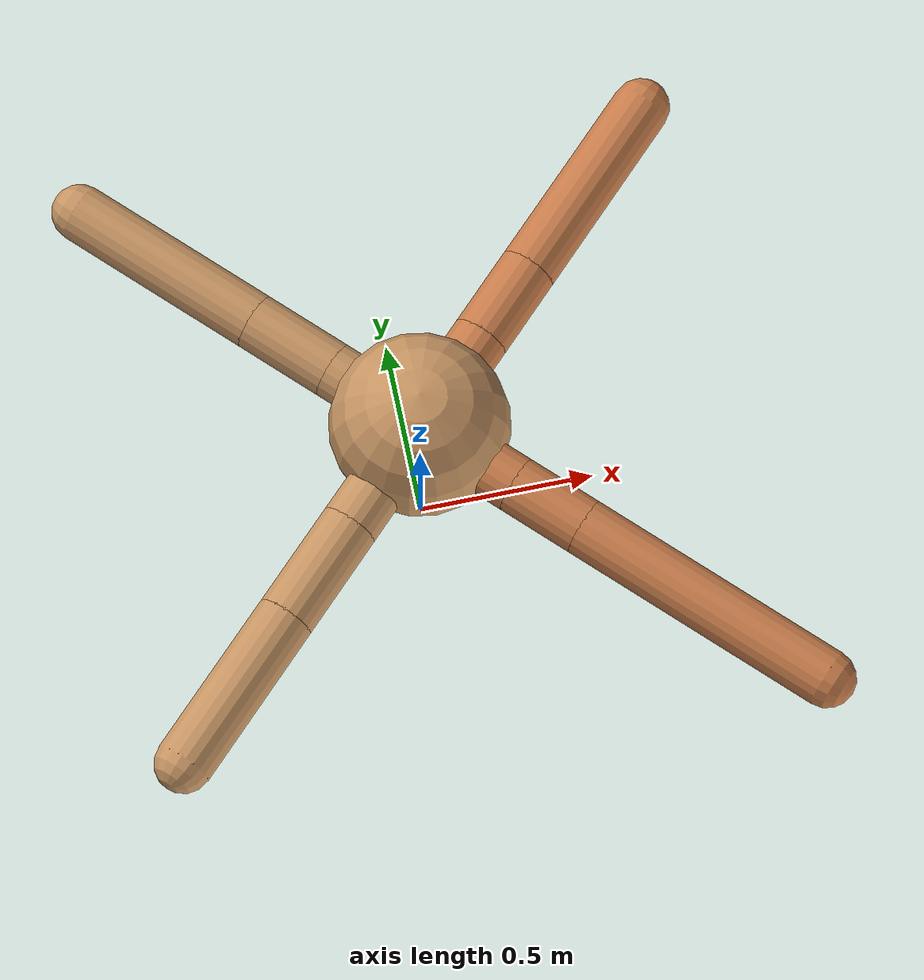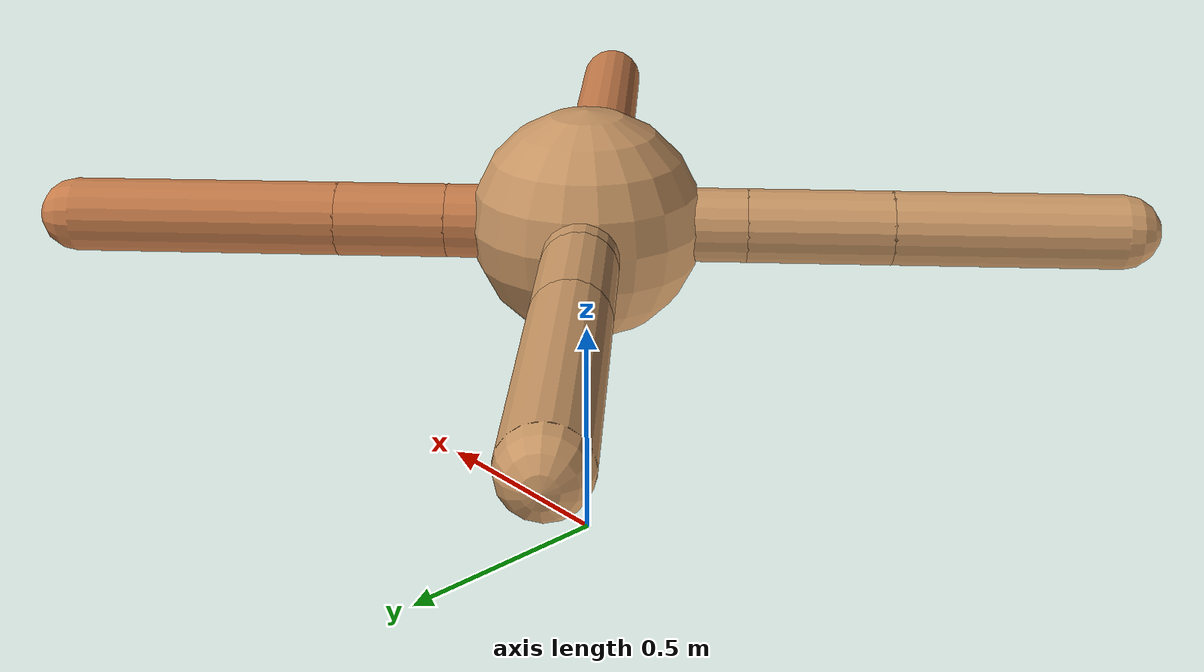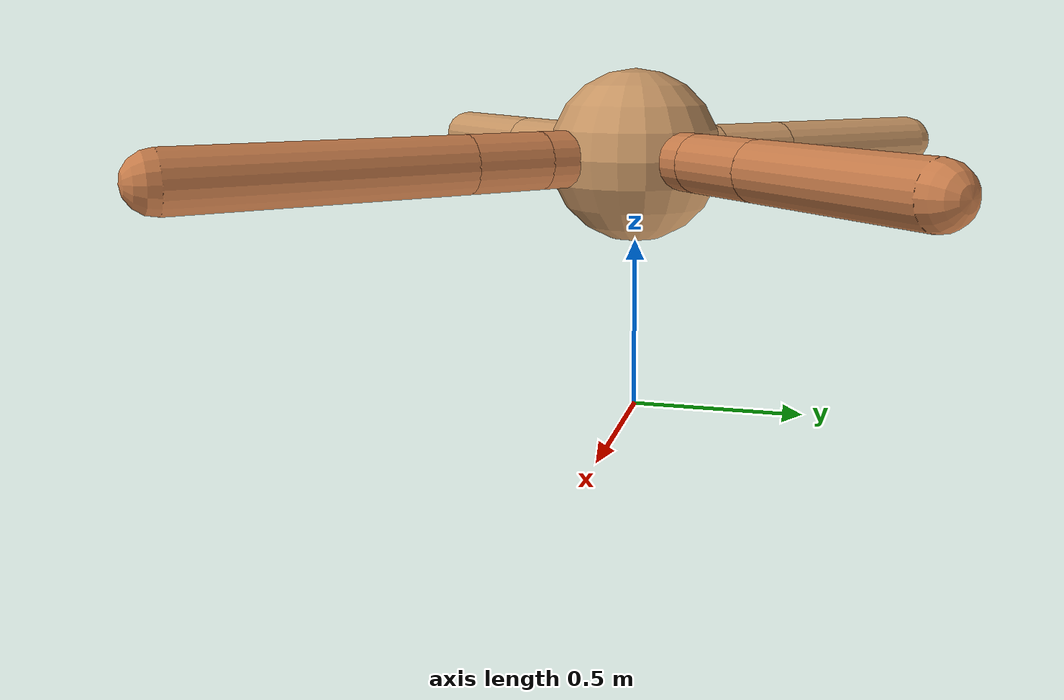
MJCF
<mujoco model="ant">
  <compiler angle="degree" coordinate="local" inertiafromgeom="true" />
  <option integrator="RK4" timestep="0.01" />
  <custom>
    <numeric data="0.0 0.0 0.55 1.0 0.0 0.0 0.0 0.0 1.0 0.0 -1.0 0.0 -1.0 0.0 1.0" name="init_qpos" />
  </custom>
  <default>
    <joint armature="1" damping="1" limited="true" />
    <geom conaffinity="0" condim="3" density="5.0" friction="1.5 0.1 0.1" margin="0.01" rgba="0.8 0.6 0.4 1" />
  </default>
  <worldbody>
    <body name="torso" pos="0 0 0.75">
      <geom name="torso_geom" pos="0 0 0" size="0.25" type="sphere" />

      <body name="front_left_leg" pos="0 0 0">
        <geom fromto="0.0 0.0 0.0 0.21327654322849998 0.21327654322849998 0.0" name="aux_1_geom" size="0.08" type="capsule" rgba=".8 .5 .3 1" />
        <body name="aux_1" pos="0.21327654322849998 0.21327654322849998 0.0">
          <joint axis="0 0 1" name="hip_1" pos="0.0 0.0 0.0" range="-40 40" type="hinge" />
          <geom fromto="0.0 0.0 0.0 0.16768136419365154 0.16768136419365154 0.0" name="left_leg_geom" size="0.08" type="capsule" rgba=".8 .5 .3 1" />
          <body pos="0.16768136419365154 0.16768136419365154 0.0" name="front_left_foot">
            <joint axis="-1 1 0" name="ankle_1" pos="0.0 0.0 0.0" range="30 100" type="hinge" />
            <geom fromto="0.0 0.0 0.0 0.4071067419972623 0.4071067419972623 0.0" name="left_ankle_geom" size="0.08" type="capsule" rgba=".8 .5 .3 1" />
          </body>
        </body>
      </body>
      <body name="front_right_leg" pos="0 0 0">
        <geom fromto="0.0 0.0 0.0 -0.20082200946021908 0.20082200946021908 0.0" name="aux_2_geom" size="0.08" type="capsule" />
        <body name="aux_2" pos="-0.20082200946021908 0.20082200946021908 0.0">
          <joint axis="0 0 1" name="hip_2" pos="0.0 0.0 0.0" range="-40 40" type="hinge" />
          <geom fromto="0.0 0.0 0.0 -0.18107559120569602 0.18107559120569602 0.0" name="right_leg_geom" size="0.08" type="capsule" />
          <body pos="-0.18107559120569602 0.18107559120569602 0.0" name="front_right_foot">
            <joint axis="1 1 0" name="ankle_2" pos="0.0 0.0 0.0" range="-100 -30" type="hinge" />
            <geom fromto="0.0 0.0 0.0 -0.410267915644851 0.410267915644851 0.0" name="right_ankle_geom" size="0.08" type="capsule" />
          </body>
        </body>
      </body>
      <body name="left_back_leg" pos="0 0 0">
        <geom fromto="0.0 0.0 0.0 -0.24285279436320462 -0.24285279436320462 0.0" name="aux_3_geom" size="0.08" type="capsule" />
        <body name="aux_3" pos="-0.24285279436320462 -0.24285279436320462 0.0">
          <joint axis="0 0 1" name="hip_3" pos="0.0 0.0 0.0" range="-40 40" type="hinge" />
          <geom fromto="0.0 0.0 0.0 -0.21802684460232236 -0.21802684460232236 0.0" name="back_leg_geom" size="0.08" type="capsule" />
          <body pos="-0.21802684460232236 -0.21802684460232236 0.0" name="left_back_foot">
            <joint axis="-1 1 0" name="ankle_3" pos="0.0 0.0 0.0" range="-100 -30" type="hinge" />
            <geom fromto="0.0 0.0 0.0 -0.34325408856299033 -0.34325408856299033 0.0" name="third_ankle_geom" size="0.08" type="capsule" />
          </body>
        </body>
      </body>
      <body name="right_back_leg" pos="0 0 0">
        <geom fromto="0.0 0.0 0.0 0.2205247703552239 -0.2205247703552239 0.0" name="aux_4_geom" size="0.08" type="capsule" rgba=".8 .5 .3 1" />
        <body name="aux_4" pos="0.2205247703552239 -0.2205247703552239 0.0">
          <joint axis="0 0 1" name="hip_4" pos="0.0 0.0 0.0" range="-40 40" type="hinge" />
          <geom fromto="0.0 0.0 0.0 0.15450641411043786 -0.15450641411043786 0.0" name="rightback_leg_geom" size="0.08" type="capsule" rgba=".8 .5 .3 1" />
          <body pos="0.15450641411043786 -0.15450641411043786 0.0" name="right_back_foot">
            <joint axis="1 1 0" name="ankle_4" pos="0.0 0.0 0.0" range="30 100" type="hinge" />
            <geom fromto="0.0 0.0 0.0 0.5451211062901621 -0.5451211062901621 0.0" name="fourth_ankle_geom" size="0.08" type="capsule" rgba=".8 .5 .3 1" />
          </body>
        </body>
      </body>
    </body>
  </worldbody>
  <actuator>
    <motor ctrllimited="true" ctrlrange="-1.0 1.0" joint="hip_4" gear="150" />
    <motor ctrllimited="true" ctrlrange="-1.0 1.0" joint="ankle_4" gear="150" />
    <motor ctrllimited="true" ctrlrange="-1.0 1.0" joint="hip_1" gear="150" />
    <motor ctrllimited="true" ctrlrange="-1.0 1.0" joint="ankle_1" gear="150" />
    <motor ctrllimited="true" ctrlrange="-1.0 1.0" joint="hip_2" gear="150" />
    <motor ctrllimited="true" ctrlrange="-1.0 1.0" joint="ankle_2" gear="150" />
    <motor ctrllimited="true" ctrlrange="-1.0 1.0" joint="hip_3" gear="150" />
    <motor ctrllimited="true" ctrlrange="-1.0 1.0" joint="ankle_3" gear="150" />
  </actuator>
</mujoco>
